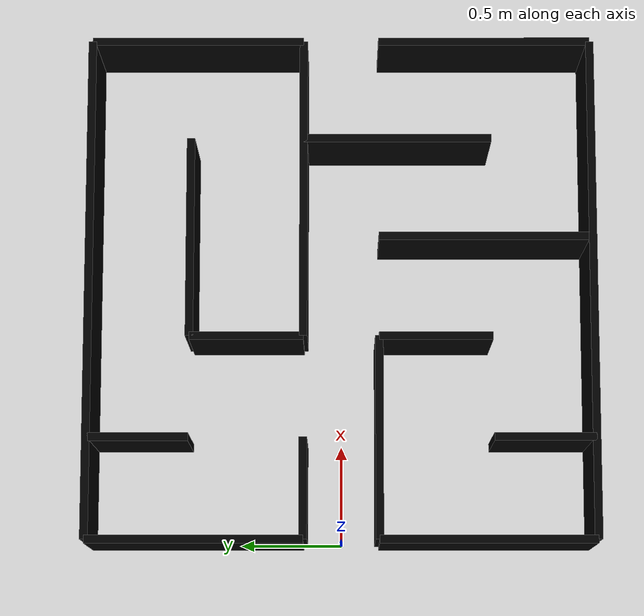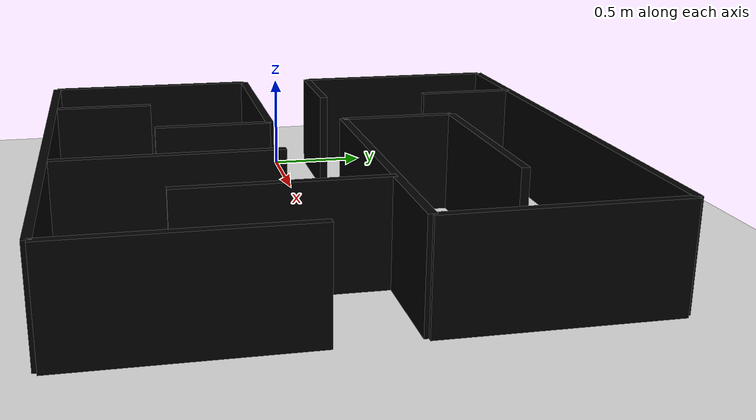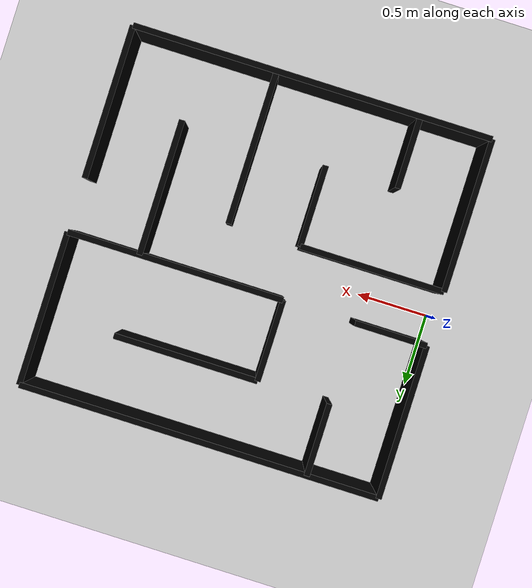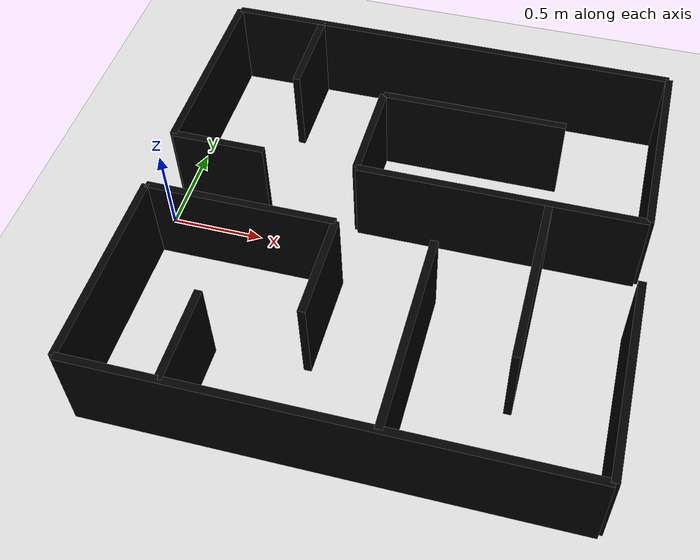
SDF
<?xml version="1.0" ?>
<sdf version="1.6">
  <world name="default">
    <!-- Gravity set to keep robot grounded and avoid floating/climbing artifacts -->
    <gravity>0 0 -9.81</gravity>

    <plugin filename="gz-sim-physics-system" name="gz::sim::systems::Physics"/>
    <plugin filename="gz-sim-user-commands-system" name="gz::sim::systems::UserCommands"/>
    <plugin filename="gz-sim-scene-broadcaster-system" name="gz::sim::systems::SceneBroadcaster"/>
    <plugin filename="gz-sim-sensors-system" name="gz::sim::systems::Sensors">
      <render_engine>ogre2</render_engine>
    </plugin>
    <plugin filename="gz-sim-imu-system" name="gz::sim::systems::Imu"/>

    <light type="directional" name="sun">
      <cast_shadows>true</cast_shadows>
      <pose>0 0 10 0 0 0</pose>
      <diffuse>1 1 1 1</diffuse>
      <specular>0.5 0.5 0.5 1</specular>
      <attenuation>
        <range>1000</range>
        <constant>0.9</constant>
        <linear>0.01</linear>
        <quadratic>0.001</quadratic>
      </attenuation>
      <direction>-0.5 0.1 -0.9</direction>
    </light>

    <model name="ground_plane">
      <static>true</static>
      <link name="link">
        <collision name="collision">
          <geometry>
            <plane>
              <normal>0 0 1</normal>
              <size>100 100</size>
            </plane>
          </geometry>
          <surface>
            <friction>
              <ode>
                <mu>0.0</mu>
                <mu2>0.0</mu2>
              </ode>
            </friction>
          </surface>
        </collision>
        <visual name="visual">
          <geometry>
            <plane>
              <normal>0 0 1</normal>
              <size>100 100</size>
            </plane>
          </geometry>
          <material>
            <ambient>0.85 0.85 0.85 1</ambient>
            <diffuse>0.85 0.85 0.85 1</diffuse>
            <specular>0.85 0.85 0.85 1</specular>
          </material>
        </visual>
      </link>
    </model>

    <!-- Mê cung 5m x 5m dựa theo ảnh tham chiếu -->
    <model name="maze_5x5">
      <static>true</static>
      <pose>2.5 -1.25 0 0 0 1.5708</pose>
      <link name="walls">

      <collision name="c_left_outer"><pose>0 1.25 0.25 0 0 0</pose><geometry><box><size>0.04 2.5 0.5</size></box></geometry></collision>
        <visual    name="v_left_outer"><pose>0 1.25 0.25 0 0 0</pose><geometry><box><size>0.04 2.5 0.5</size></box></geometry><material><ambient>0 0 0 1</ambient><diffuse>0 0 0 1</diffuse></material></visual>

        <collision name="c_top_left"><pose>0.53125 2.5 0.25 0 0 0</pose><geometry><box><size>1.0625 0.04 0.5</size></box></geometry></collision>
        <visual    name="v_top_left"><pose>0.53125 2.5 0.25 0 0 0</pose><geometry><box><size>1.0625 0.04 0.5</size></box></geometry><material><ambient>0 0 0 1</ambient><diffuse>0 0 0 1</diffuse></material></visual>

        <collision name="c_left_short_top"><pose>0.25 2.0 0.25 0 0 0</pose><geometry><box><size>0.5 0.04 0.5</size></box></geometry></collision>
<visual    name="v_left_short_top"><pose>0.25 2.0 0.25 0 0 0</pose><geometry><box><size>0.5 0.04 0.5</size></box></geometry><material><ambient>0 0 0 1</ambient><diffuse>0 0 0 1</diffuse></material></visual>

        <collision name="c_left_inner_vert"><pose>1.0625 2.0 0.25 0 0 0</pose><geometry><box><size>0.04 1.0 0.5</size></box></geometry></collision>
        <visual    name="v_left_inner_vert"><pose>1.0625 2.0 0.25 0 0 0</pose><geometry><box><size>0.04 1.0 0.5</size></box></geometry><material><ambient>0 0 0 1</ambient><diffuse>0 0 0 1</diffuse></material></visual>

        <collision name="c_left_mid"><pose>0.78125 1.5 0.25 0 0 0</pose><geometry><box><size>0.5625 0.04 0.5</size></box></geometry></collision>
        <visual    name="v_left_mid"><pose>0.78125 1.5 0.25 0 0 0</pose><geometry><box><size>0.5625 0.04 0.5</size></box></geometry><material><ambient>0 0 0 1</ambient><diffuse>0 0 0 1</diffuse></material></visual>

        <collision name="c_left_long"><pose>0.53125 1.0 0.25 0 0 0</pose><geometry><box><size>1.0625 0.04 0.5</size></box></geometry></collision>
        <visual    name="v_left_long"><pose>0.53125 1.0 0.25 0 0 0</pose><geometry><box><size>1.0625 0.04 0.5</size></box></geometry><material><ambient>0 0 0 1</ambient><diffuse>0 0 0 1</diffuse></material></visual>

        <collision name="c_bottom_left"><pose>0.53125 0.0 0.25 0 0 0</pose><geometry><box><size>1.0625 0.04 0.5</size></box></geometry></collision>
        <visual    name="v_bottom_left"><pose>0.53125 0.0 0.25 0 0 0</pose><geometry><box><size>1.0625 0.04 0.5</size></box></geometry><material><ambient>0 0 0 1</ambient><diffuse>0 0 0 1</diffuse></material></visual>

        <collision name="c_bottom_mid"><pose>0.96875 0.5 0.25 0 0 0</pose><geometry><box><size>0.9375 0.04 0.5</size></box></geometry></collision>
        <visual    name="v_bottom_mid"><pose>0.96875 0.5 0.25 0 0 0</pose><geometry><box><size>0.9375 0.04 0.5</size></box></geometry><material><ambient>0 0 0 1</ambient><diffuse>0 0 0 1</diffuse></material></visual>

        <collision name="c_right_short_vert"><pose>1.4375 2.25 0.25 0 0 0</pose><geometry><box><size>0.04 0.5 0.5</size></box></geometry></collision>
        <visual    name="v_right_short_vert"><pose>1.4375 2.25 0.25 0 0 0</pose><geometry><box><size>0.04 0.5 0.5</size></box></geometry><material><ambient>0 0 0 1</ambient><diffuse>0 0 0 1</diffuse></material></visual>

        <collision name="c_top_right"><pose>1.96875 2.5 0.25 0 0 0</pose><geometry><box><size>1.0625 0.04 0.5</size></box></geometry></collision>
        <visual    name="v_top_right"><pose>1.96875 2.5 0.25 0 0 0</pose><geometry><box><size>1.0625 0.04 0.5</size></box></geometry><material><ambient>0 0 0 1</ambient><diffuse>0 0 0 1</diffuse></material></visual>

        <collision name="c_right_short_top"><pose>2.25 2.0 0.25 0 0 0</pose><geometry><box><size>0.5 0.04 0.5</size></box></geometry></collision>
<visual    name="v_right_short_top"><pose>2.25 2.0 0.25 0 0 0</pose><geometry><box><size>0.5 0.04 0.5</size></box></geometry><material><ambient>0 0 0 1</ambient><diffuse>0 0 0 1</diffuse></material></visual>

        <collision name="c_right_outer"><pose>2.5 1.25 0.25 0 0 0</pose><geometry><box><size>0.04 2.5 0.5</size></box></geometry></collision>
        <visual    name="v_right_outer"><pose>2.5 1.25 0.25 0 0 0</pose><geometry><box><size>0.04 2.5 0.5</size></box></geometry><material><ambient>0 0 0 1</ambient><diffuse>0 0 0 1</diffuse></material></visual>

        <collision name="c_right_block_left"><pose>1.4375 0.75 0.25 0 0 0</pose><geometry><box><size>0.04 1.5 0.5</size></box></geometry></collision>
        <visual    name="v_right_block_left"><pose>1.4375 0.75 0.25 0 0 0</pose><geometry><box><size>0.04 1.5 0.5</size></box></geometry><material><ambient>0 0 0 1</ambient><diffuse>0 0 0 1</diffuse></material></visual>

        <collision name="c_right_mid"><pose>1.71875 1.5 0.25 0 0 0</pose><geometry><box><size>0.5625 0.04 0.5</size></box></geometry></collision>
        <visual    name="v_right_mid"><pose>1.71875 1.5 0.25 0 0 0</pose><geometry><box><size>0.5625 0.04 0.5</size></box></geometry><material><ambient>0 0 0 1</ambient><diffuse>0 0 0 1</diffuse></material></visual>

        <collision name="c_right_inner_vert"><pose>2.0 1.0 0.25 0 0 0</pose><geometry><box><size>0.04 1.0 0.5</size></box></geometry></collision>
        <visual    name="v_right_inner_vert"><pose>2.0 1.0 0.25 0 0 0</pose><geometry><box><size>0.04 1.0 0.5</size></box></geometry><material><ambient>0 0 0 1</ambient><diffuse>0 0 0 1</diffuse></material></visual>

        <collision name="c_bottom_right"><pose>1.96875 0.0 0.25 0 0 0</pose><geometry><box><size>1.0625 0.04 0.5</size></box></geometry></collision>
        <visual    name="v_bottom_right"><pose>1.96875 0.0 0.25 0 0 0</pose><geometry><box><size>1.0625 0.04 0.5</size></box></geometry><material><ambient>0 0 0 1</ambient><diffuse>0 0 0 1</diffuse></material></visual>

      </link>
    </model>

  </world>
</sdf>
